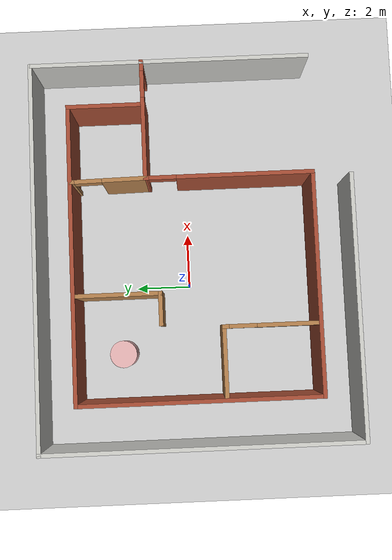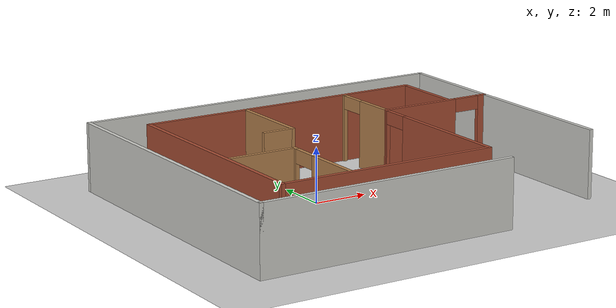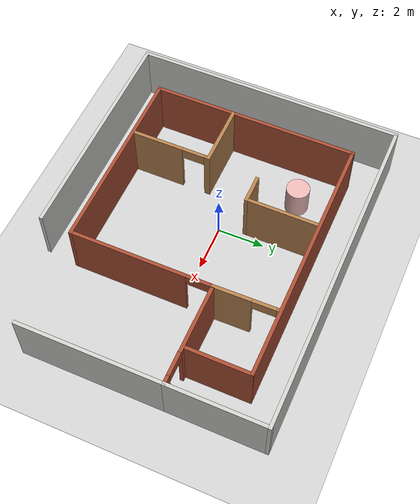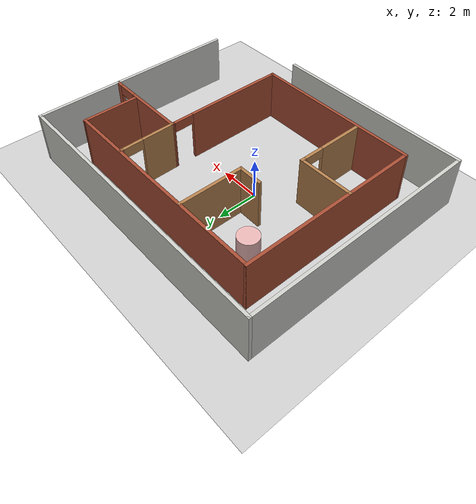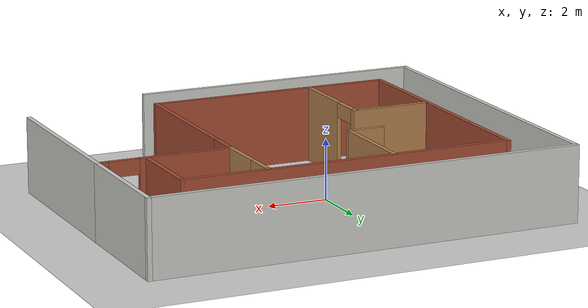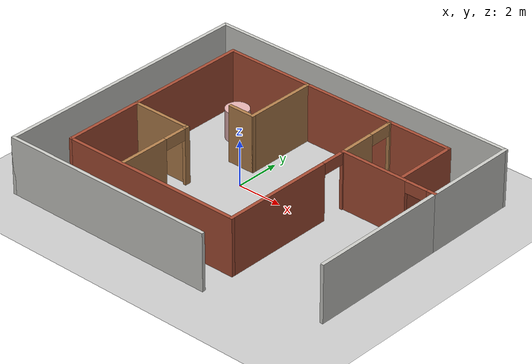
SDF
<sdf version="1.6">
 <world name="default">
  <light name="sun" type="directional">
   <pose>0 0 10 0 -0 0</pose>
   <diffuse>0.8 0.8 0.8 1</diffuse>
   <specular>0.2 0.2 0.2 1</specular>
   <attenuation>
    <range>1000</range>
    <constant>0.9</constant>
    <linear>0.01</linear>
    <quadratic>0.001</quadratic>
   </attenuation>
   <direction>-0.5 0.1 -0.9</direction>
  </light>
  <model name="ground_plane">
   <static>1</static>
   <link name="link">
    <collision name="collision">
     <geometry><plane><normal>0 0 1</normal><size>100 100</size></plane></geometry>
     <surface><friction><ode><mu>100</mu><mu2>50</mu2></ode></friction></surface>
    </collision>
    <visual name="visual">
     <cast_shadows>0</cast_shadows>
     <geometry><plane><normal>0 0 1</normal><size>100 100</size></plane></geometry>
     <material>
      <script><uri>file://media/materials/scripts/gazebo.material</uri><name>Gazebo/Grey</name></script>
     </material>
    </visual>
   </link>
  </model>
  <gravity>0 0 -9.8</gravity>
  <magnetic_field>6e-06 2.3e-05 -4.2e-05</magnetic_field>
  <atmosphere type="adiabatic"/>
  <physics name="default_physics" default="0" type="ode">
   <max_step_size>0.001</max_step_size>
   <real_time_factor>1</real_time_factor>
   <real_time_update_rate>1000</real_time_update_rate>
  </physics>
  <scene><ambient>0.4 0.4 0.4 1</ambient><background>0.7 0.7 0.7 1</background><shadows>1</shadows></scene>
  <spherical_coordinates>
   <surface_model>EARTH_WGS84</surface_model>
   <latitude_deg>0</latitude_deg>
   <longitude_deg>0</longitude_deg>
   <elevation>0</elevation>
   <heading_deg>0</heading_deg>
  </spherical_coordinates>
  <model name="adaptada">
   <pose>1.18856 -0.2523 0 0 -0 0</pose>
   <link name="Wall_0">
    <collision name="Wall_0_Collision">
     <geometry><box><size>6.25 0.15 2.5</size></box></geometry>
     <pose>0 0 1.25 0 -0 0</pose>
    </collision>
    <visual name="Wall_0_Visual">
     <pose>0 0 1.25 0 -0 0</pose>
     <geometry><box><size>6.25 0.15 2.5</size></box></geometry>
     <material>
      <script><uri>file://media/materials/scripts/gazebo.material</uri><name>Gazebo/CeilingTiled</name></script>
      <ambient>1 1 1 1</ambient>
     </material>
     <meta><layer>0</layer></meta>
    </visual>
    <pose>7.05 -1.35 0 0 -0 1.5708</pose>
   </link>
   <link name="Wall_1">
    <pose>4.875 1.7 0 0 -0 3.14159</pose>
    <visual name="Wall_1_Visual_0">
     <pose>-2.04113 0 1.25 0 -0 0</pose>
     <geometry><box><size>0.417739 0.15 2.5</size></box></geometry>
     <material>
      <script><uri>file://media/materials/scripts/gazebo.material</uri><name>Gazebo/Bricks</name></script>
      <ambient>1 1 1 1</ambient>
     </material>
     <meta><layer>0</layer></meta>
    </visual>
    <collision name="Wall_1_Collision_0">
     <geometry><box><size>0.417739 0.15 2.5</size></box></geometry>
     <pose>-2.04113 0 1.25 0 -0 0</pose>
    </collision>
    <visual name="Wall_1_Visual_1">
     <pose>0.70887 0 1.25 0 -0 0</pose>
     <geometry><box><size>3.08226 0.15 2.5</size></box></geometry>
     <material>
      <script><uri>file://media/materials/scripts/gazebo.material</uri><name>Gazebo/Bricks</name></script>
      <ambient>1 1 1 1</ambient>
     </material>
     <meta><layer>0</layer></meta>
    </visual>
    <collision name="Wall_1_Collision_1">
     <geometry><box><size>3.08226 0.15 2.5</size></box></geometry>
     <pose>0.70887 0 1.25 0 -0 0</pose>
    </collision>
    <visual name="Wall_1_Visual_2">
     <pose>-1.33226 0 2.25 0 -0 0</pose>
     <geometry><box><size>1 0.15 0.5</size></box></geometry>
     <material>
      <script><uri>file://media/materials/scripts/gazebo.material</uri><name>Gazebo/Bricks</name></script>
      <ambient>1 1 1 1</ambient>
     </material>
     <meta><layer>0</layer></meta>
    </visual>
    <collision name="Wall_1_Collision_2">
     <geometry><box><size>1 0.15 0.5</size></box></geometry>
     <pose>-1.33226 0 2.25 0 -0 0</pose>
    </collision>
   </link>
   <link name="Wall_11">
    <collision name="Wall_11_Collision">
     <geometry><box><size>2.75 0.15 2.5</size></box></geometry>
     <pose>0 0 1.25 0 -0 0</pose>
    </collision>
    <visual name="Wall_11_Visual">
     <pose>0 0 1.25 0 -0 0</pose>
     <geometry><box><size>2.75 0.15 2.5</size></box></geometry>
     <material>
      <script><uri>file://media/materials/scripts/gazebo.material</uri><name>Gazebo/Wood</name></script>
      <ambient>1 1 1 1</ambient>
     </material>
     <meta><layer>0</layer></meta>
    </visual>
    <pose>-4.09133 -0.927238 0 0 -0 0</pose>
   </link>
   <link name="Wall_12">
    <pose>-2.79133 -2.60224 0 0 0 -1.5708</pose>
    <visual name="Wall_12_Visual_0">
     <pose>-1.62181 0 1.25 0 -0 0</pose>
     <geometry><box><size>0.256373 0.15 2.5</size></box></geometry>
     <material>
      <script><uri>file://media/materials/scripts/gazebo.material</uri><name>Gazebo/Wood</name></script>
      <ambient>1 1 1 1</ambient>
     </material>
     <meta><layer>0</layer></meta>
    </visual>
    <collision name="Wall_12_Collision_0">
     <geometry><box><size>0.256373 0.15 2.5</size></box></geometry>
     <pose>-1.62181 0 1.25 0 -0 0</pose>
    </collision>
    <visual name="Wall_12_Visual_1">
     <pose>0.628187 0 1.25 0 -0 0</pose>
     <geometry><box><size>2.24363 0.15 2.5</size></box></geometry>
     <material>
      <script><uri>file://media/materials/scripts/gazebo.material</uri><name>Gazebo/Wood</name></script>
      <ambient>1 1 1 1</ambient>
     </material>
     <meta><layer>0</layer></meta>
    </visual>
    <collision name="Wall_12_Collision_1">
     <geometry><box><size>2.24363 0.15 2.5</size></box></geometry>
     <pose>0.628187 0 1.25 0 -0 0</pose>
    </collision>
    <visual name="Wall_12_Visual_2">
     <pose>-0.993627 0 2.25 0 -0 0</pose>
     <geometry><box><size>1 0.15 0.5</size></box></geometry>
     <material>
      <script><uri>file://media/materials/scripts/gazebo.material</uri><name>Gazebo/Wood</name></script>
      <ambient>1 1 1 1</ambient>
     </material>
     <meta><layer>0</layer></meta>
    </visual>
    <collision name="Wall_12_Collision_2">
     <geometry><box><size>1 0.15 0.5</size></box></geometry>
     <pose>-0.993627 0 2.25 0 -0 0</pose>
    </collision>
   </link>
   <link name="Wall_14">
    <pose>2.67834 3.04275 0 0 0 -1.55466</pose>
    <visual name="Wall_14_Visual_0">
     <pose>-1.33225 0 1.25 0 -0 0</pose>
     <geometry><box><size>0.171349 0.15 2.5</size></box></geometry>
     <material>
      <script><uri>file://media/materials/scripts/gazebo.material</uri><name>Gazebo/Wood</name></script>
      <ambient>1 1 1 1</ambient>
     </material>
     <meta><layer>0</layer></meta>
    </visual>
    <collision name="Wall_14_Collision_0">
     <geometry><box><size>0.171349 0.15 2.5</size></box></geometry>
     <pose>-1.33225 0 1.25 0 -0 0</pose>
    </collision>
    <visual name="Wall_14_Visual_1">
     <pose>0.585675 0 1.25 0 -0 0</pose>
     <geometry><box><size>1.66449 0.15 2.5</size></box></geometry>
     <material>
      <script><uri>file://media/materials/scripts/gazebo.material</uri><name>Gazebo/Wood</name></script>
      <ambient>1 1 1 1</ambient>
     </material>
     <meta><layer>0</layer></meta>
    </visual>
    <collision name="Wall_14_Collision_1">
     <geometry><box><size>1.66449 0.15 2.5</size></box></geometry>
     <pose>0.585675 0 1.25 0 -0 0</pose>
    </collision>
    <visual name="Wall_14_Visual_2">
     <pose>-0.746572 0 2.25 0 -0 0</pose>
     <geometry><box><size>1 0.15 0.5</size></box></geometry>
     <material>
      <script><uri>file://media/materials/scripts/gazebo.material</uri><name>Gazebo/Wood</name></script>
      <ambient>1 1 1 1</ambient>
     </material>
     <meta><layer>0</layer></meta>
    </visual>
    <collision name="Wall_14_Collision_2">
     <geometry><box><size>1 0.15 0.5</size></box></geometry>
     <pose>-0.746572 0 2.25 0 -0 0</pose>
    </collision>
   </link>
   <link name="Wall_16">
    <collision name="Wall_16_Collision">
     <geometry><box><size>4.25 0.15 2.5</size></box></geometry>
     <pose>0 0 1.25 0 -0 0</pose>
    </collision>
    <visual name="Wall_16_Visual">
     <pose>0 0 1.25 0 -0 0</pose>
     <geometry><box><size>4.25 0.15 2.5</size></box></geometry>
     <material>
      <script><uri>file://media/materials/scripts/gazebo.material</uri><name>Gazebo/CeilingTiled</name></script>
      <ambient>1 1 1 1</ambient>
     </material>
     <meta><layer>0</layer></meta>
    </visual>
    <pose>7.05 3.75 0 0 -0 1.5708</pose>
   </link>
   <link name="Wall_17">
    <collision name="Wall_17_Collision">
     <geometry><box><size>14.25 0.15 2.5</size></box></geometry>
     <pose>0 0 1.25 0 -0 0</pose>
    </collision>
    <visual name="Wall_17_Visual">
     <pose>0 0 1.25 0 -0 0</pose>
     <geometry><box><size>14.25 0.15 2.5</size></box></geometry>
     <material>
      <script><uri>file://media/materials/scripts/gazebo.material</uri><name>Gazebo/CeilingTiled</name></script>
      <ambient>1 1 1 1</ambient>
     </material>
     <meta><layer>0</layer></meta>
    </visual>
    <pose>0 5.8 0 0 -0 3.14159</pose>
   </link>
   <link name="Wall_18">
    <collision name="Wall_18_Collision">
     <geometry><box><size>11.75 0.15 2.5</size></box></geometry>
     <pose>0 0 1.25 0 -0 0</pose>
    </collision>
    <visual name="Wall_18_Visual">
     <pose>0 0 1.25 0 -0 0</pose>
     <geometry><box><size>11.75 0.15 2.5</size></box></geometry>
     <material>
      <script><uri>file://media/materials/scripts/gazebo.material</uri><name>Gazebo/CeilingTiled</name></script>
      <ambient>1 1 1 1</ambient>
     </material>
     <meta><layer>0</layer></meta>
    </visual>
    <pose>-7.05 0 0 0 0 -1.5708</pose>
   </link>
   <link name="Wall_19">
    <collision name="Wall_19_Collision">
     <geometry><box><size>9.75 0.15 2.5</size></box></geometry>
     <pose>0 0 1.25 0 -0 0</pose>
    </collision>
    <visual name="Wall_19_Visual">
     <pose>0 0 1.25 0 -0 0</pose>
     <geometry><box><size>9.75 0.15 2.5</size></box></geometry>
     <material>
      <script><uri>file://media/materials/scripts/gazebo.material</uri><name>Gazebo/CeilingTiled</name></script>
      <ambient>1 1 1 1</ambient>
     </material>
     <meta><layer>0</layer></meta>
    </visual>
    <pose>-2.25 -5.8 0 0 -0 0</pose>
   </link>
   <link name="Wall_2">
    <pose>2.7 -1.35 0 0 0 -1.5708</pose>
    <visual name="Wall_2_Visual_0">
     <pose>-3.02331 0 1.25 0 -0 0</pose>
     <geometry><box><size>0.203389 0.15 2.5</size></box></geometry>
     <material>
      <script><uri>file://media/materials/scripts/gazebo.material</uri><name>Gazebo/Bricks</name></script>
      <ambient>1 1 1 1</ambient>
     </material>
     <meta><layer>0</layer></meta>
    </visual>
    <collision name="Wall_2_Collision_0">
     <geometry><box><size>0.203389 0.15 2.5</size></box></geometry>
     <pose>-3.02331 0 1.25 0 -0 0</pose>
    </collision>
    <visual name="Wall_2_Visual_1">
     <pose>0.601694 0 1.25 0 -0 0</pose>
     <geometry><box><size>5.04661 0.15 2.5</size></box></geometry>
     <material>
      <script><uri>file://media/materials/scripts/gazebo.material</uri><name>Gazebo/Bricks</name></script>
      <ambient>1 1 1 1</ambient>
     </material>
     <meta><layer>0</layer></meta>
    </visual>
    <collision name="Wall_2_Collision_1">
     <geometry><box><size>5.04661 0.15 2.5</size></box></geometry>
     <pose>0.601694 0 1.25 0 -0 0</pose>
    </collision>
    <visual name="Wall_2_Visual_2">
     <pose>-2.42161 0 2.25 0 -0 0</pose>
     <geometry><box><size>1 0.15 0.5</size></box></geometry>
     <material>
      <script><uri>file://media/materials/scripts/gazebo.material</uri><name>Gazebo/Bricks</name></script>
      <ambient>1 1 1 1</ambient>
     </material>
     <meta><layer>0</layer></meta>
    </visual>
    <collision name="Wall_2_Collision_2">
     <geometry><box><size>1 0.15 0.5</size></box></geometry>
     <pose>-2.42161 0 2.25 0 -0 0</pose>
    </collision>
   </link>
   <link name="Wall_3">
    <collision name="Wall_3_Collision">
     <geometry><box><size>8.25 0.15 2.5</size></box></geometry>
     <pose>0 0 1.25 0 -0 0</pose>
    </collision>
    <visual name="Wall_3_Visual">
     <pose>0 0 1.25 0 -0 0</pose>
     <geometry><box><size>8.25 0.15 2.5</size></box></geometry>
     <material>
      <script><uri>file://media/materials/scripts/gazebo.material</uri><name>Gazebo/Bricks</name></script>
      <ambient>1 1 1 1</ambient>
     </material>
     <meta><layer>0</layer></meta>
    </visual>
    <pose>-1.35 -4.4 0 0 -0 3.14159</pose>
   </link>
   <link name="Wall_4">
    <collision name="Wall_4_Collision">
     <geometry><box><size>9 0.15 2.5</size></box></geometry>
     <pose>0 0 1.25 0 -0 0</pose>
    </collision>
    <visual name="Wall_4_Visual">
     <pose>0 0 1.25 0 -0 0</pose>
     <geometry><box><size>9 0.15 2.5</size></box></geometry>
     <material>
      <script><uri>file://media/materials/scripts/gazebo.material</uri><name>Gazebo/Bricks</name></script>
      <ambient>1 1 1 1</ambient>
     </material>
     <meta><layer>0</layer></meta>
    </visual>
    <pose>-5.4 0.025 0 0 -0 1.5708</pose>
   </link>
   <link name="Wall_5">
    <collision name="Wall_5_Collision">
     <geometry><box><size>11 0.15 2.5</size></box></geometry>
     <pose>0 0 1.25 0 -0 0</pose>
    </collision>
    <visual name="Wall_5_Visual">
     <pose>0 0 1.25 0 -0 0</pose>
     <geometry><box><size>11 0.15 2.5</size></box></geometry>
     <material>
      <script><uri>file://media/materials/scripts/gazebo.material</uri><name>Gazebo/Bricks</name></script>
      <ambient>1 1 1 1</ambient>
     </material>
     <meta><layer>0</layer></meta>
    </visual>
    <pose>0.025 4.45 0 0 -0 0</pose>
   </link>
   <link name="Wall_6">
    <collision name="Wall_6_Collision">
     <geometry><box><size>2.75 0.15 2.5</size></box></geometry>
     <pose>0 0 1.25 0 -0 0</pose>
    </collision>
    <visual name="Wall_6_Visual">
     <pose>0 0 1.25 0 -0 0</pose>
     <geometry><box><size>2.75 0.15 2.5</size></box></geometry>
     <material>
      <script><uri>file://media/materials/scripts/gazebo.material</uri><name>Gazebo/Bricks</name></script>
      <ambient>1 1 1 1</ambient>
     </material>
     <meta><layer>0</layer></meta>
    </visual>
    <pose>5.45 3.15 0 0 0 -1.5708</pose>
   </link>
   <link name="Wall_8">
    <collision name="Wall_8_Collision">
     <geometry><box><size>3.25 0.15 2.5</size></box></geometry>
     <pose>0 0 1.25 0 -0 0</pose>
    </collision>
    <visual name="Wall_8_Visual">
     <pose>0 0 1.25 0 -0 0</pose>
     <geometry><box><size>3.25 0.15 2.5</size></box></geometry>
     <material>
      <script><uri>file://media/materials/scripts/gazebo.material</uri><name>Gazebo/Wood</name></script>
      <ambient>1 1 1 1</ambient>
     </material>
     <meta><layer>0</layer></meta>
    </visual>
    <pose>-1.49883 2.86179 0 0 0 -1.5708</pose>
   </link>
   <link name="Wall_9">
    <collision name="Wall_9_Collision">
     <geometry><box><size>1.25 0.15 2.5</size></box></geometry>
     <pose>0 0 1.25 0 -0 0</pose>
    </collision>
    <visual name="Wall_9_Visual">
     <pose>0 0 1.25 0 -0 0</pose>
     <geometry><box><size>1.25 0.15 2.5</size></box></geometry>
     <material>
      <script><uri>file://media/materials/scripts/gazebo.material</uri><name>Gazebo/Wood</name></script>
      <ambient>1 1 1 1</ambient>
     </material>
     <meta><layer>0</layer></meta>
    </visual>
    <pose>-2.04883 1.31179 0 0 -0 3.14159</pose>
   </link>
   <static>1</static>
  </model>
  <model name="unit_cylinder">
   <link name="link">
    <inertial>
     <mass>1</mass>
     <inertia><ixx>0.145833</ixx><ixy>0</ixy><ixz>0</ixz><iyy>0.145833</iyy><iyz>0</iyz><izz>0.125</izz></inertia>
    </inertial>
    <visual name="visual">
     <geometry><cylinder><radius>0.5</radius><length>1.3</length></cylinder></geometry>
     <material>
      <script><name>Gazebo/Grey</name><uri>file://media/materials/scripts/gazebo.material</uri></script>
      <shader type="pixel"><normal_map>__default__</normal_map></shader>
      <ambient>0.5 0.3 0.3 1</ambient>
      <diffuse>0.9 0.7 0.7 1</diffuse>
      <specular>0.01 0.01 0.01 1</specular>
      <emissive>0 0 0 1</emissive>
     </material>
    </visual>
    <collision name="collision">
     <geometry><cylinder><radius>0.5</radius><length>1.3</length></cylinder></geometry>
     <surface>
      <friction>
       <ode><mu>1</mu><mu2>1</mu2><fdir1>0 0 0</fdir1><slip1>0</slip1><slip2>0</slip2></ode>
       <torsional>
        <coefficient>1</coefficient>
        <patch_radius>0</patch_radius>
        <surface_radius>0</surface_radius>
        <use_patch_radius>1</use_patch_radius>
        <ode><slip>0</slip></ode>
       </torsional>
      </friction>
      <bounce><restitution_coefficient>0</restitution_coefficient><threshold>1e+06</threshold></bounce>
      <contact>
       <collide_without_contact>0</collide_without_contact>
       <collide_without_contact_bitmask>1</collide_without_contact_bitmask>
       <collide_bitmask>1</collide_bitmask>
       <ode>
        <soft_cfm>0</soft_cfm>
        <soft_erp>0.2</soft_erp>
        <kp>1e+13</kp>
        <kd>1</kd>
        <max_vel>0.01</max_vel>
        <min_depth>0</min_depth>
       </ode>
       <bullet>
        <split_impulse>1</split_impulse>
        <split_impulse_penetration_threshold>-0.01</split_impulse_penetration_threshold>
        <soft_cfm>0</soft_cfm>
        <soft_erp>0.2</soft_erp>
        <kp>1e+13</kp>
        <kd>1</kd>
       </bullet>
      </contact>
     </surface>
    </collision>
   </link>
   <static>0</static>
   <pose>-2.46034 2.54385 0.649995 0 -0 0</pose>
  </model>
 </world>
</sdf>
